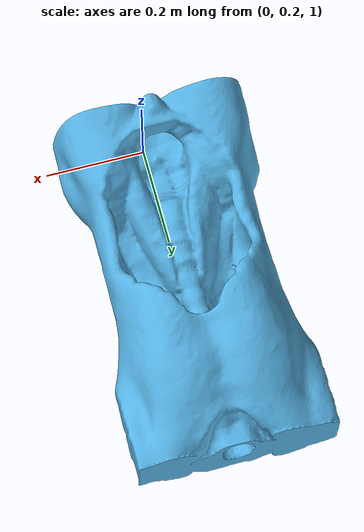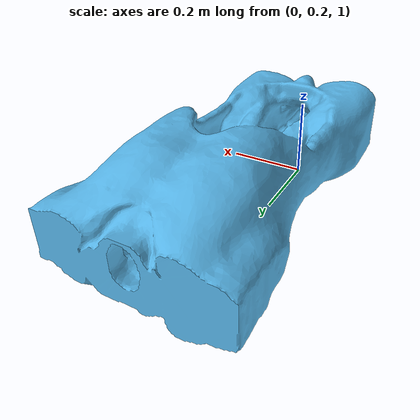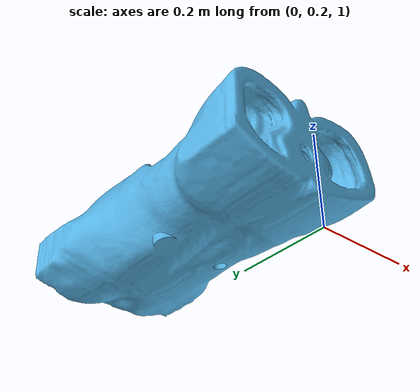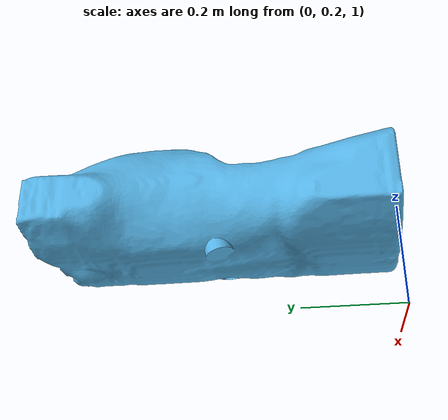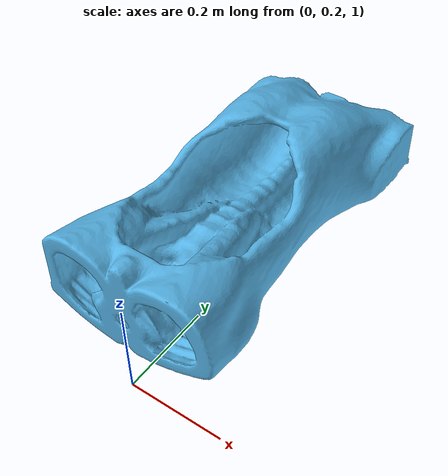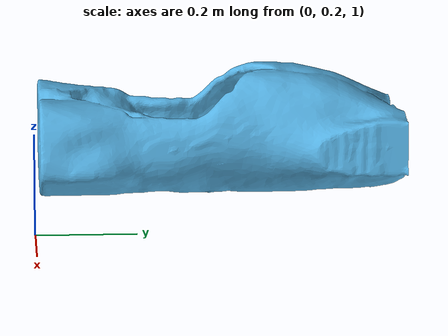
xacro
<?xml version="1.0" ?>
<robot name="body" xmlns:xacro="http://www.ros.org/wiki/xacro">

  <!-- Macros -->
  <!-- Macros -->
  <xacro:include filename="$(find surgical_sim)/models/urdf/body/torso/torso.urdf.xacro"/>

  <xacro:arg name="with_liver" default="false"/>
  <xacro:arg name="attached_to" default="world"/>
  <xacro:arg name="bodyOrigin_x" default="0.0"/>
  <xacro:arg name="bodyOrigin_y" default="0.5"/>
  <xacro:arg name="bodyOrigin_z" default="1.1"/>
  <xacro:arg name="bodyOrigin_ax" default="0.0"/>
  <xacro:arg name="bodyOrigin_ay" default="0.0"/>
  <xacro:arg name="bodyOrigin_az" default="0.0"/>

  <link name="$(arg attached_to)"/>

   <xacro:create_torso
        parent_link="$(arg attached_to)"
        xyz="$(arg bodyOrigin_x) $(arg bodyOrigin_y) $(arg bodyOrigin_z)"
        rpy="$(arg bodyOrigin_ax) $(arg bodyOrigin_ay) $(arg bodyOrigin_az)"/>

    <gazebo>
        <plugin name="gazebo_ros_control" filename="libgazebo_ros_control.so">
        <robotNamespace>/body</robotNamespace>
        <robotSimType>gazebo_ros_control/DefaultRobotHWSim</robotSimType>
        <legacyModeNS>true</legacyModeNS>
        </plugin>
    </gazebo>

</robot>

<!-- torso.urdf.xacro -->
<robot name="body" xmlns:xacro="http://www.ros.org/wiki/xacro">

  <xacro:include filename="$(find surgical_sim)/models/urdf/body/torso/torso.links.xacro"/>
  <xacro:include filename="$(find surgical_sim)/models/urdf/body/torso/torso.joints.xacro"/>

  <xacro:macro name="create_torso" params="parent_link xyz rpy">
    <xacro:create_torso_links
          parent_link="${parent_link}"
          xyz="${xyz}" rpy="${rpy}"/>
    <xacro:create_torso_joints
          parent_link="${parent_link}"
          xyz="${xyz}" rpy="${rpy}"/>
  </xacro:macro>

</robot>

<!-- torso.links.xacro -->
<robot name="body" xmlns:xacro="http://www.ros.org/wiki/xacro">

<xacro:include filename="$(find surgical_sim)/models/urdf/body/templates/gazebo.links.xacro"/>

  <xacro:macro name="create_torso_links" params="parent_link xyz rpy">

    <!-- link 1: torso_link -->
    <link name="torso_link">
      <visual>
        <origin rpy="${-pi/2} 0 0" xyz="0 0 0"/>
        <geometry>
          <mesh filename="package://surgical_sim/models/meshes/dae/body/torso.dae"/>
        </geometry>
      </visual>
      <collision>
        <origin rpy="${-pi/2} 0 0" xyz="0 0 0"/>
        <geometry>
          <mesh filename="package://surgical_sim/models/meshes/stl/body/torso_simp_2_3.stl" scale="1.0 1.0 1.0"/>
        </geometry>
      </collision>
      <inertial>
				<origin xyz="0 0 0" rpy="0 0 0"/>
				<mass value="30"/>
				<inertia ixx="0.5" ixy="0.0" ixz="0.0" iyy="0.5" iyz="0.0" izz="0.5"/>
			</inertial>
    </link>

   <xacro:gazebo_links name="torso_link"/>
  </xacro:macro>

</robot>

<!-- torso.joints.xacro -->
<robot name="body" xmlns:xacro="http://www.ros.org/wiki/xacro">

  <xacro:include filename="$(find surgical_sim)/models/urdf/body/templates/joint.transmissions.xacro"/>
  <xacro:include filename="$(find surgical_sim)/models/urdf/body/templates/gazebo.joints.xacro"/>

  <xacro:macro name="create_torso_joints" params="parent_link xyz rpy">

    <!-- joint 1 -->
    <joint name="torso_joint" type="fixed">
      <parent link="${parent_link}"/>
      <child link="torso_link"/>
      <axis xyz="0 0 1"/>
      <origin rpy="${rpy}" xyz="${xyz}"/>
    </joint>

    <xacro:gazebo_joints name="torso_joint"/>

  </xacro:macro>
</robot>
